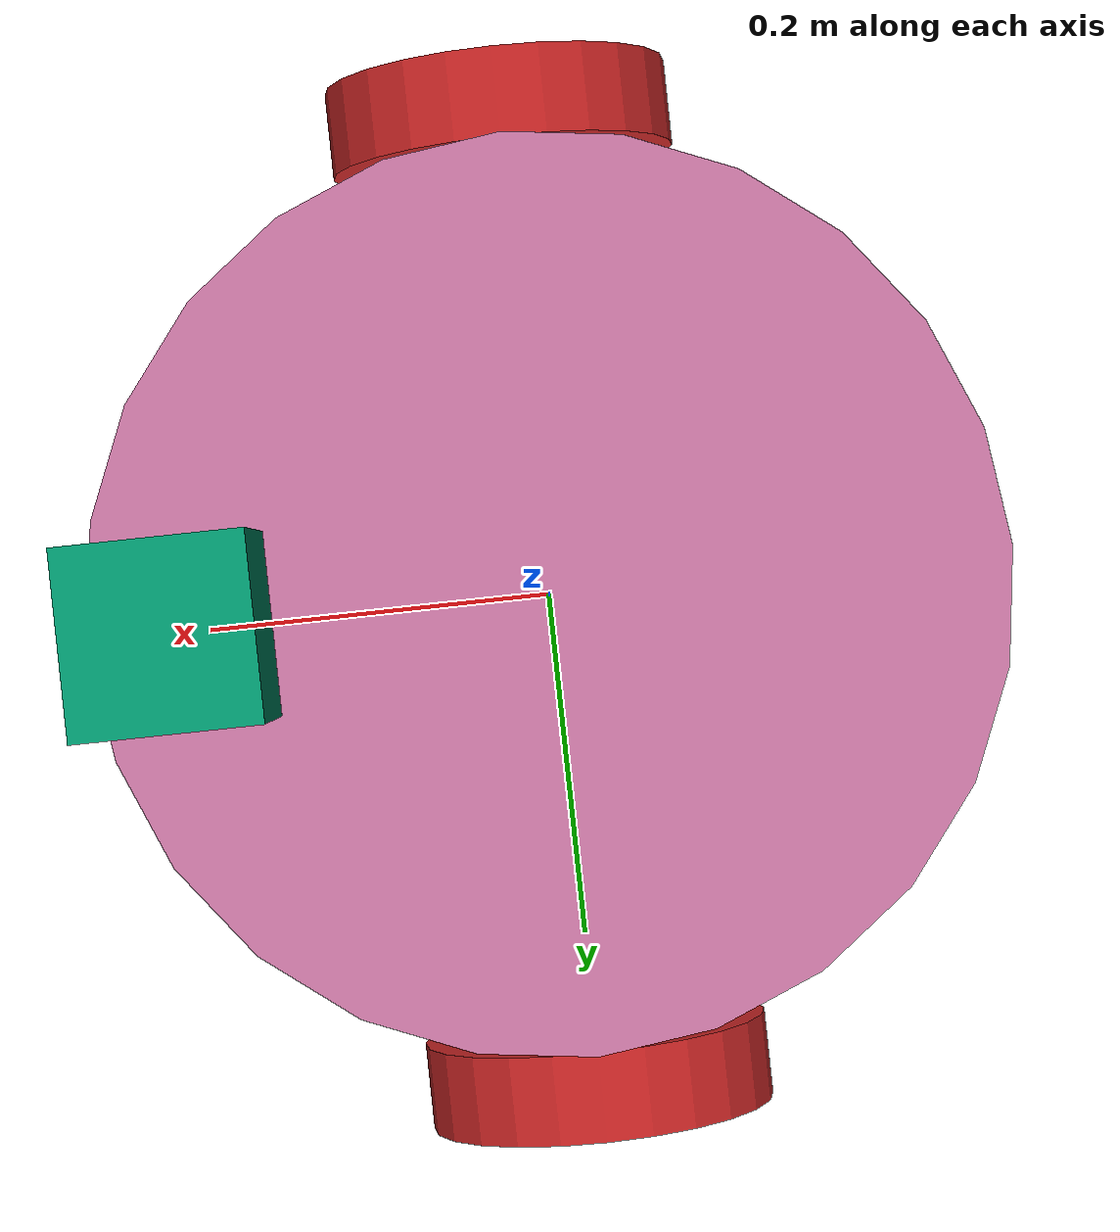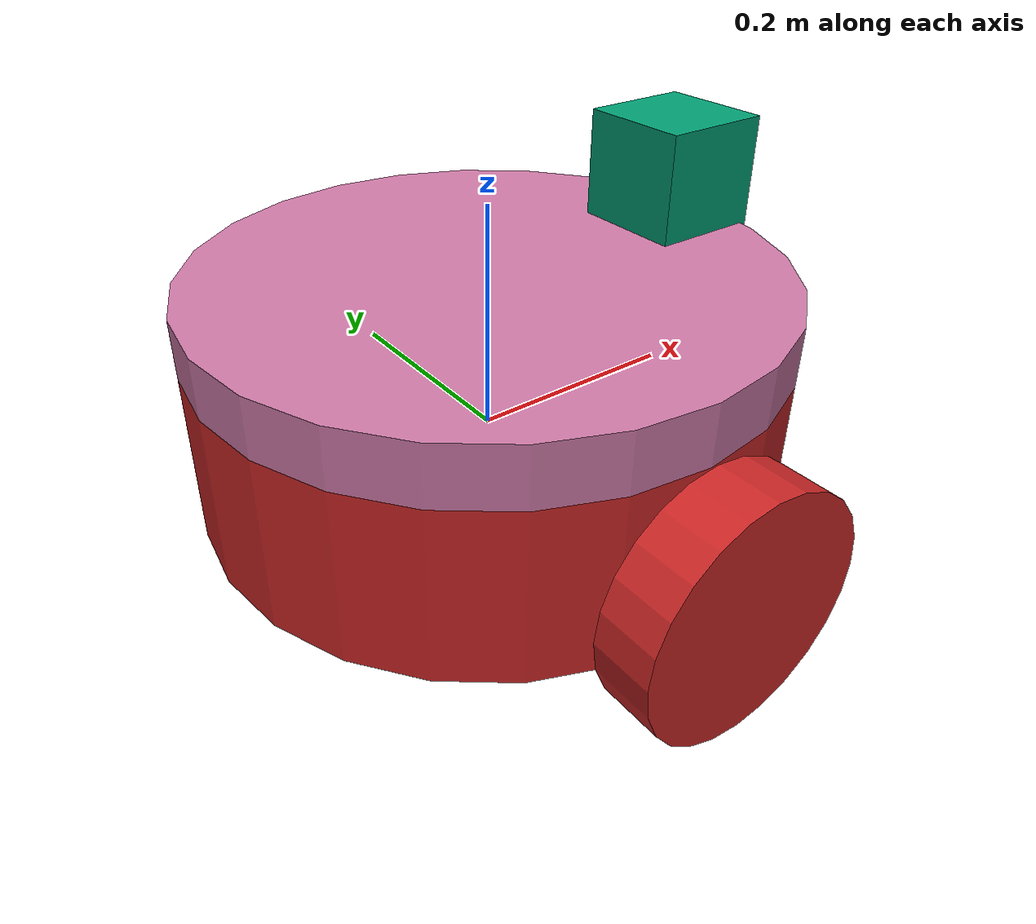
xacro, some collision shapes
<?xml version='1.0'?>

<robot name="trixy" xmlns:xacro="http://www.ros.org/wiki/xacro">

  <xacro:include filename="$(find trixy)/urdf/trixy.gazebo" />

  <gazebo reference="left_wheel">
    <material>Gazebo/Red</material>
  </gazebo>

  <gazebo reference="right_wheel">
    <material>Gazebo/Red</material>
  </gazebo>

  <gazebo reference="camera">
    <material>Gazebo/White</material>
  </gazebo>

  <gazebo reference="chassis">
    <material>Gazebo/Red</material>
  </gazebo>

  <link name="robot_footprint"></link>

  <joint name="robot_footprint_joint" type="fixed">
    <origin xyz="0 0 0" rpy="0 0 0" />
    <parent link="robot_footprint"/>
    <child link="chassis" />
  </joint>

  <joint name="chassis_upper_joint" type="fixed">
    <origin xyz="0 0 0.07" rpy="0 0 0" />
    <parent link="chassis"/>
    <child link="chassis_upper" />
  </joint>

  <joint name="camera_joint" type="fixed">
    <origin xyz="0.26 0 0" rpy="0 0 0" />
    <parent link="chassis"/>
    <child link="camera" />
    <axis xyz="0 1 0"/>
  </joint>

  <joint name="hokuyo_joint" type="fixed">
    <origin xyz="0.2 0 0.19" rpy="0 0 0" />
    <parent link="chassis"/>
    <child link="hokuyo" />
    <axis xyz="0 1 0"/>
  </joint>

  <joint type="continuous" name="left_wheel_hinge">
    <origin xyz="0 0.28 0" rpy="0 0 0" />
    <parent link="chassis"/>
    <child link="left_wheel" />
    <axis xyz="0 1 0" rpy="0 0 0" />
    <limit effort="10000" velocity="1000" />
    <dynamics damping="1.0" friction="1.0" />
  </joint>

  <joint type="continuous" name="right_wheel_hinge">
    <origin xyz="0 -0.28 0" rpy="0 0 0" />
    <parent link="chassis"/>
    <child link="right_wheel" />
    <axis xyz="0 1 0" rpy="0 0 0" />
    <limit effort="10000" velocity="1000" />
    <dynamics damping="1.0" friction="1.0" />
  </joint>
<link name="camera">
    <inertial>
      <mass value="0.1"/>
      <origin xyz="0 0 0" rpy="0 0 0"/>
      <inertia
        ixx="1e-6" ixy="0.0" ixz="0.0"
        iyy="1e-6" iyz="0.0"
        izz="1e-6"
      />
    </inertial>

    <collision>
      <origin xyz="0 0 0" rpy="0 0 0"/>
      <geometry>
        <box size="0.05 0.05 0.05"/>
      </geometry>
    </collision>

    <visual>
      <origin xyz="0 0 0" rpy="0 0 0"/>
      <geometry>
        <box size="0.05 0.05 0.05"/>
      </geometry>
    </visual>

  </link>

  <link name="hokuyo">
    <inertial>
      <mass value="1e-5"/>
      <origin xyz="0 0 0" rpy="0 0 0"/>
      <inertia
        ixx="1e-6" ixy="0.0" ixz="0.0"
        iyy="1e-6" iyz="0.0"
        izz="1e-6"
      />
    </inertial>

    <collision>
      <origin xyz="0 0 0" rpy="0 0 0"/>
      <geometry>
        <box size="0.1 0.1 0.1"/>
      </geometry>
    </collision>

    <visual>
      <origin xyz="0 0 0" rpy="0 0 0"/>
      <geometry>
        <mesh filename="package://trixy/meshes/hokuyo.dae"/>
      </geometry>
    </visual>

  </link>

  <link name="left_wheel">
    <inertial>
      <mass value="5"/>
      <origin xyz="0 0 0" rpy="0 1.5707 1.5707"/>
      <inertia
        ixx="0.1" ixy="0.0" ixz="0.0"
        iyy="0.1" iyz="0.0"
        izz="0.1"
      />
    </inertial>

    <collision>
      <origin xyz="0 0 0" rpy="0 1.5707 1.5707"/>
      <geometry>
        <cylinder radius="0.1" length="0.05"/>
      </geometry>
    </collision>

    <visual>
      <origin xyz="0 0 0" rpy="0 1.5707 1.5707"/>
      <geometry>
        <cylinder radius="0.1" length="0.05"/>
      </geometry>
    </visual>

  </link>

  <link name="right_wheel">
    <inertial>
      <mass value="5"/>
      <origin xyz="0 0 0" rpy="0 1.5707 1.5707"/>
      <inertia
        ixx="0.1" ixy="0.0" ixz="0.0"
        iyy="0.1" iyz="0.0"
        izz="0.1"
      />
    </inertial>

    <collision>
      <origin xyz="0 0 0" rpy="0 1.5707 1.5707"/>
      <geometry>
        <cylinder radius="0.1" length="0.05"/>
      </geometry>
    </collision>

    <visual>
      <origin xyz="0 0 0" rpy="0 1.5707 1.5707"/>
      <geometry>
        <cylinder radius="0.1" length="0.05"/>
      </geometry>
    </visual>

  </link>

  <link name='chassis'>
    <pose>0 0 0.1 0 0 0</pose>

    <inertial>
      <mass value="15.0"/>
      <origin xyz="0.0 0 0" rpy=" 0 0 0"/>
      <inertia
          ixx="0.1" ixy="0" ixz="0"
          iyy="0.1" iyz="0"
          izz="0.1"
      />
    </inertial>

    <collision name='collision'>
      <origin xyz="0 0 0.02" rpy=" 0 0 0"/>
      <geometry>
        <cylinder length="0.15" radius="0.25"/>
      </geometry>
    </collision>

    <visual name='chassis_visual'>
      <origin xyz="0 0 0.02" rpy=" 0 0 0"/>
      <geometry>
       <cylinder length="0.15" radius="0.25"/>
      </geometry>
    </visual>

    <collision name='back_caster_collision'>
      <origin xyz="-0.15 0 -0.05" rpy=" 0 0 0"/>
      <geometry>
        <sphere radius="0.0499"/>
      </geometry>
    </collision>

    <visual name='back_caster_visual'>
      <origin xyz="-0.15 0 -0.05" rpy=" 0 0 0"/>
      <geometry>
        <sphere radius="0.05"/>
      </geometry>
    </visual>

    <collision name='front_caster_collision'>
      <origin xyz="0.15 0 -0.05" rpy=" 0 0 0"/>
      <geometry>
        <sphere radius="0.0499"/>
      </geometry>
    </collision>

    <visual name='front_caster_visual'>
      <origin xyz="0.15 0 -0.05" rpy=" 0 0 0"/>
      <geometry>
        <sphere radius="0.05"/>
      </geometry>
    </visual>

  </link>
  <link name='chassis_upper'>
    <pose>0 0 0.1 0 0 0</pose>

    <inertial>
      <mass value="15.0"/>
      <origin xyz="0.0 0 0" rpy=" 0 0 0"/>
      <inertia
          ixx="0.1" ixy="0" ixz="0"
          iyy="0.1" iyz="0"
          izz="0.1"
      />
    </inertial>

    <collision name='upper_collision'>
      <origin xyz="0 0 0.05" rpy=" 0 0 0"/>
      <geometry>
        <cylinder length="0.05" radius="0.25"/>
      </geometry>
    </collision>

    <visual name='chassis_upper_visual'>
      <origin xyz="0 0 0.05" rpy=" 0 0 0"/>
      <geometry>
       <cylinder length="0.05" radius="0.25"/>
      </geometry>
    </visual>
    </link>

</robot>
